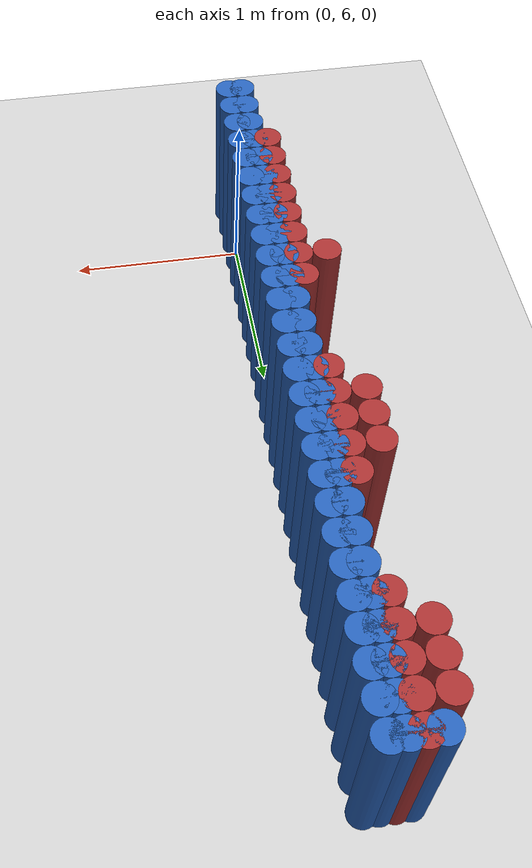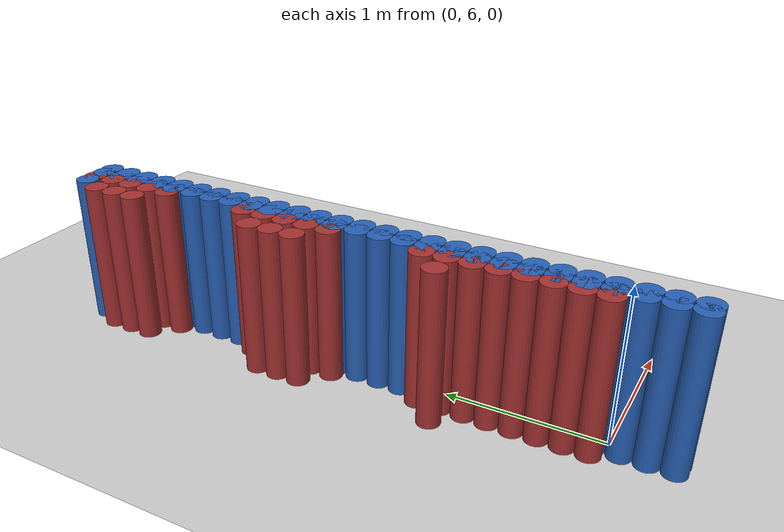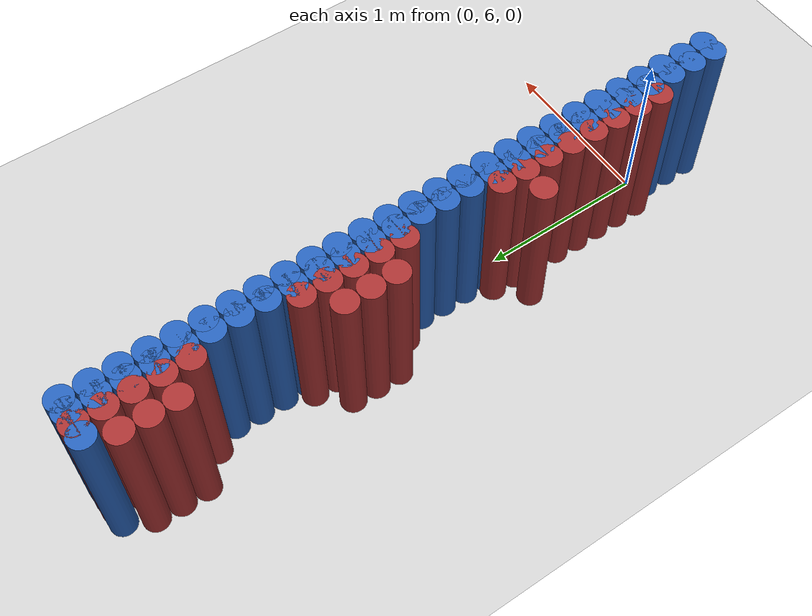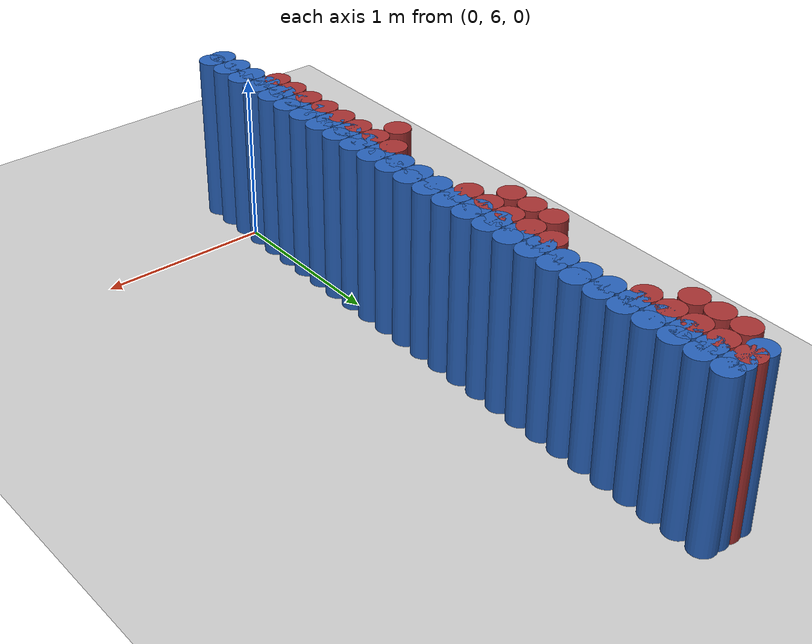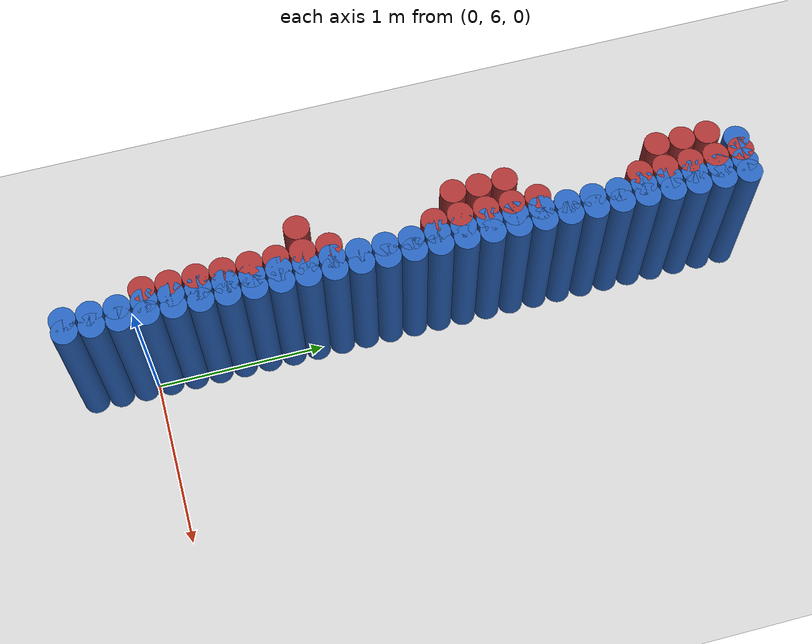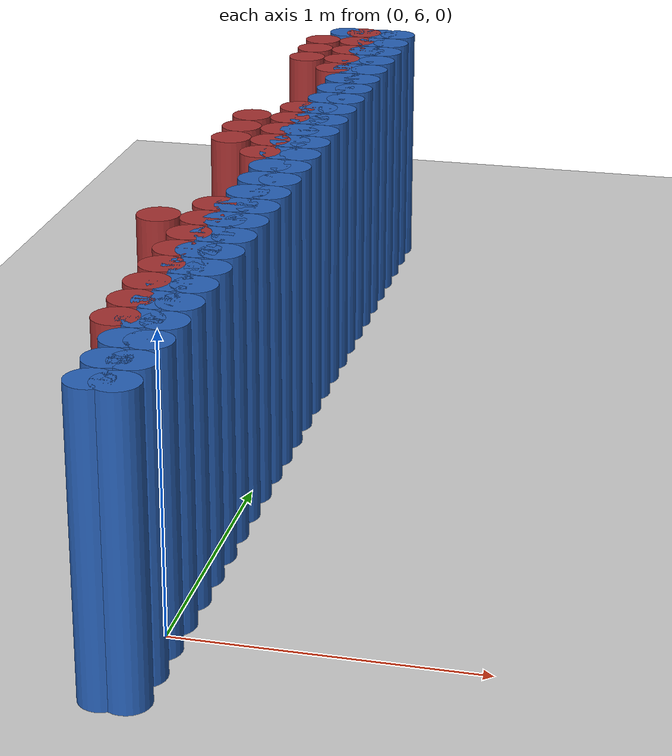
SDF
<sdf version="1.6">
 <world name="barn_world">
  <model name="ground_plane">
   <static>1</static>
   <link name="link">
    <collision name="collision">
     <geometry><plane><normal>0 0 1</normal><size>100 100</size></plane></geometry>
    </collision>
    <visual name="visual">
     <geometry><plane><normal>0 0 1</normal><size>100 100</size></plane></geometry>
     <material>
      <script><uri>file://media/materials/scripts/gazebo.material</uri><name>Gazebo/Grey</name></script>
     </material>
    </visual>
   </link>
  </model>
  <model name="unit_cylinder_257">
   <static>1</static>
   <pose>-0.3000 6.9750 0.5 0 0 0</pose>
   <link name="link">
    <collision name="collision">
     <geometry><cylinder><radius>0.075</radius><length>1</length></cylinder></geometry>
    </collision>
    <visual name="visual">
     <geometry><cylinder><radius>0.075</radius><length>1</length></cylinder></geometry>
     <material><ambient>0.648 0.192 0.192 1</ambient><diffuse>0.648 0.192 0.192 1</diffuse></material>
    </visual>
   </link>
  </model>
  <model name="unit_cylinder_258">
   <static>1</static>
   <pose>-0.3000 7.8750 0.5 0 0 0</pose>
   <link name="link">
    <collision name="collision">
     <geometry><cylinder><radius>0.075</radius><length>1</length></cylinder></geometry>
    </collision>
    <visual name="visual">
     <geometry><cylinder><radius>0.075</radius><length>1</length></cylinder></geometry>
     <material><ambient>0.648 0.192 0.192 1</ambient><diffuse>0.648 0.192 0.192 1</diffuse></material>
    </visual>
   </link>
  </model>
  <model name="unit_cylinder_259">
   <static>1</static>
   <pose>-0.3000 8.0250 0.5 0 0 0</pose>
   <link name="link">
    <collision name="collision">
     <geometry><cylinder><radius>0.075</radius><length>1</length></cylinder></geometry>
    </collision>
    <visual name="visual">
     <geometry><cylinder><radius>0.075</radius><length>1</length></cylinder></geometry>
     <material><ambient>0.648 0.192 0.192 1</ambient><diffuse>0.648 0.192 0.192 1</diffuse></material>
    </visual>
   </link>
  </model>
  <model name="unit_cylinder_260">
   <static>1</static>
   <pose>-0.3000 8.1750 0.5 0 0 0</pose>
   <link name="link">
    <collision name="collision">
     <geometry><cylinder><radius>0.075</radius><length>1</length></cylinder></geometry>
    </collision>
    <visual name="visual">
     <geometry><cylinder><radius>0.075</radius><length>1</length></cylinder></geometry>
     <material><ambient>0.648 0.192 0.192 1</ambient><diffuse>0.648 0.192 0.192 1</diffuse></material>
    </visual>
   </link>
  </model>
  <model name="unit_cylinder_261">
   <static>1</static>
   <pose>-0.3000 9.0750 0.5 0 0 0</pose>
   <link name="link">
    <collision name="collision">
     <geometry><cylinder><radius>0.075</radius><length>1</length></cylinder></geometry>
    </collision>
    <visual name="visual">
     <geometry><cylinder><radius>0.075</radius><length>1</length></cylinder></geometry>
     <material><ambient>0.648 0.192 0.192 1</ambient><diffuse>0.648 0.192 0.192 1</diffuse></material>
    </visual>
   </link>
  </model>
  <model name="unit_cylinder_262">
   <static>1</static>
   <pose>-0.3000 9.2250 0.5 0 0 0</pose>
   <link name="link">
    <collision name="collision">
     <geometry><cylinder><radius>0.075</radius><length>1</length></cylinder></geometry>
    </collision>
    <visual name="visual">
     <geometry><cylinder><radius>0.075</radius><length>1</length></cylinder></geometry>
     <material><ambient>0.648 0.192 0.192 1</ambient><diffuse>0.648 0.192 0.192 1</diffuse></material>
    </visual>
   </link>
  </model>
  <model name="unit_cylinder_263">
   <static>1</static>
   <pose>-0.3000 9.3750 0.5 0 0 0</pose>
   <link name="link">
    <collision name="collision">
     <geometry><cylinder><radius>0.075</radius><length>1</length></cylinder></geometry>
    </collision>
    <visual name="visual">
     <geometry><cylinder><radius>0.075</radius><length>1</length></cylinder></geometry>
     <material><ambient>0.648 0.192 0.192 1</ambient><diffuse>0.648 0.192 0.192 1</diffuse></material>
    </visual>
   </link>
  </model>
  <model name="unit_cylinder_264">
   <static>1</static>
   <pose>-0.1500 6.0750 0.5 0 0 0</pose>
   <link name="link">
    <collision name="collision">
     <geometry><cylinder><radius>0.075</radius><length>1</length></cylinder></geometry>
    </collision>
    <visual name="visual">
     <geometry><cylinder><radius>0.075</radius><length>1</length></cylinder></geometry>
     <material><ambient>0.648 0.192 0.192 1</ambient><diffuse>0.648 0.192 0.192 1</diffuse></material>
    </visual>
   </link>
  </model>
  <model name="unit_cylinder_265">
   <static>1</static>
   <pose>-0.1500 6.2250 0.5 0 0 0</pose>
   <link name="link">
    <collision name="collision">
     <geometry><cylinder><radius>0.075</radius><length>1</length></cylinder></geometry>
    </collision>
    <visual name="visual">
     <geometry><cylinder><radius>0.075</radius><length>1</length></cylinder></geometry>
     <material><ambient>0.648 0.192 0.192 1</ambient><diffuse>0.648 0.192 0.192 1</diffuse></material>
    </visual>
   </link>
  </model>
  <model name="unit_cylinder_266">
   <static>1</static>
   <pose>-0.1500 6.3750 0.5 0 0 0</pose>
   <link name="link">
    <collision name="collision">
     <geometry><cylinder><radius>0.075</radius><length>1</length></cylinder></geometry>
    </collision>
    <visual name="visual">
     <geometry><cylinder><radius>0.075</radius><length>1</length></cylinder></geometry>
     <material><ambient>0.648 0.192 0.192 1</ambient><diffuse>0.648 0.192 0.192 1</diffuse></material>
    </visual>
   </link>
  </model>
  <model name="unit_cylinder_267">
   <static>1</static>
   <pose>-0.1500 6.5250 0.5 0 0 0</pose>
   <link name="link">
    <collision name="collision">
     <geometry><cylinder><radius>0.075</radius><length>1</length></cylinder></geometry>
    </collision>
    <visual name="visual">
     <geometry><cylinder><radius>0.075</radius><length>1</length></cylinder></geometry>
     <material><ambient>0.648 0.192 0.192 1</ambient><diffuse>0.648 0.192 0.192 1</diffuse></material>
    </visual>
   </link>
  </model>
  <model name="unit_cylinder_268">
   <static>1</static>
   <pose>-0.1500 6.6750 0.5 0 0 0</pose>
   <link name="link">
    <collision name="collision">
     <geometry><cylinder><radius>0.075</radius><length>1</length></cylinder></geometry>
    </collision>
    <visual name="visual">
     <geometry><cylinder><radius>0.075</radius><length>1</length></cylinder></geometry>
     <material><ambient>0.648 0.192 0.192 1</ambient><diffuse>0.648 0.192 0.192 1</diffuse></material>
    </visual>
   </link>
  </model>
  <model name="unit_cylinder_269">
   <static>1</static>
   <pose>-0.1500 6.8250 0.5 0 0 0</pose>
   <link name="link">
    <collision name="collision">
     <geometry><cylinder><radius>0.075</radius><length>1</length></cylinder></geometry>
    </collision>
    <visual name="visual">
     <geometry><cylinder><radius>0.075</radius><length>1</length></cylinder></geometry>
     <material><ambient>0.648 0.192 0.192 1</ambient><diffuse>0.648 0.192 0.192 1</diffuse></material>
    </visual>
   </link>
  </model>
  <model name="unit_cylinder_270">
   <static>1</static>
   <pose>-0.1500 6.9750 0.5 0 0 0</pose>
   <link name="link">
    <collision name="collision">
     <geometry><cylinder><radius>0.075</radius><length>1</length></cylinder></geometry>
    </collision>
    <visual name="visual">
     <geometry><cylinder><radius>0.075</radius><length>1</length></cylinder></geometry>
     <material><ambient>0.648 0.192 0.192 1</ambient><diffuse>0.648 0.192 0.192 1</diffuse></material>
    </visual>
   </link>
  </model>
  <model name="unit_cylinder_271">
   <static>1</static>
   <pose>-0.1500 7.1250 0.5 0 0 0</pose>
   <link name="link">
    <collision name="collision">
     <geometry><cylinder><radius>0.075</radius><length>1</length></cylinder></geometry>
    </collision>
    <visual name="visual">
     <geometry><cylinder><radius>0.075</radius><length>1</length></cylinder></geometry>
     <material><ambient>0.648 0.192 0.192 1</ambient><diffuse>0.648 0.192 0.192 1</diffuse></material>
    </visual>
   </link>
  </model>
  <model name="unit_cylinder_272">
   <static>1</static>
   <pose>-0.1500 7.7250 0.5 0 0 0</pose>
   <link name="link">
    <collision name="collision">
     <geometry><cylinder><radius>0.075</radius><length>1</length></cylinder></geometry>
    </collision>
    <visual name="visual">
     <geometry><cylinder><radius>0.075</radius><length>1</length></cylinder></geometry>
     <material><ambient>0.648 0.192 0.192 1</ambient><diffuse>0.648 0.192 0.192 1</diffuse></material>
    </visual>
   </link>
  </model>
  <model name="unit_cylinder_273">
   <static>1</static>
   <pose>-0.1500 7.8750 0.5 0 0 0</pose>
   <link name="link">
    <collision name="collision">
     <geometry><cylinder><radius>0.075</radius><length>1</length></cylinder></geometry>
    </collision>
    <visual name="visual">
     <geometry><cylinder><radius>0.075</radius><length>1</length></cylinder></geometry>
     <material><ambient>0.648 0.192 0.192 1</ambient><diffuse>0.648 0.192 0.192 1</diffuse></material>
    </visual>
   </link>
  </model>
  <model name="unit_cylinder_274">
   <static>1</static>
   <pose>-0.1500 8.0250 0.5 0 0 0</pose>
   <link name="link">
    <collision name="collision">
     <geometry><cylinder><radius>0.075</radius><length>1</length></cylinder></geometry>
    </collision>
    <visual name="visual">
     <geometry><cylinder><radius>0.075</radius><length>1</length></cylinder></geometry>
     <material><ambient>0.648 0.192 0.192 1</ambient><diffuse>0.648 0.192 0.192 1</diffuse></material>
    </visual>
   </link>
  </model>
  <model name="unit_cylinder_275">
   <static>1</static>
   <pose>-0.1500 8.1750 0.5 0 0 0</pose>
   <link name="link">
    <collision name="collision">
     <geometry><cylinder><radius>0.075</radius><length>1</length></cylinder></geometry>
    </collision>
    <visual name="visual">
     <geometry><cylinder><radius>0.075</radius><length>1</length></cylinder></geometry>
     <material><ambient>0.648 0.192 0.192 1</ambient><diffuse>0.648 0.192 0.192 1</diffuse></material>
    </visual>
   </link>
  </model>
  <model name="unit_cylinder_276">
   <static>1</static>
   <pose>-0.1500 8.3250 0.5 0 0 0</pose>
   <link name="link">
    <collision name="collision">
     <geometry><cylinder><radius>0.075</radius><length>1</length></cylinder></geometry>
    </collision>
    <visual name="visual">
     <geometry><cylinder><radius>0.075</radius><length>1</length></cylinder></geometry>
     <material><ambient>0.648 0.192 0.192 1</ambient><diffuse>0.648 0.192 0.192 1</diffuse></material>
    </visual>
   </link>
  </model>
  <model name="unit_cylinder_277">
   <static>1</static>
   <pose>-0.1500 8.9250 0.5 0 0 0</pose>
   <link name="link">
    <collision name="collision">
     <geometry><cylinder><radius>0.075</radius><length>1</length></cylinder></geometry>
    </collision>
    <visual name="visual">
     <geometry><cylinder><radius>0.075</radius><length>1</length></cylinder></geometry>
     <material><ambient>0.648 0.192 0.192 1</ambient><diffuse>0.648 0.192 0.192 1</diffuse></material>
    </visual>
   </link>
  </model>
  <model name="unit_cylinder_278">
   <static>1</static>
   <pose>-0.1500 9.0750 0.5 0 0 0</pose>
   <link name="link">
    <collision name="collision">
     <geometry><cylinder><radius>0.075</radius><length>1</length></cylinder></geometry>
    </collision>
    <visual name="visual">
     <geometry><cylinder><radius>0.075</radius><length>1</length></cylinder></geometry>
     <material><ambient>0.648 0.192 0.192 1</ambient><diffuse>0.648 0.192 0.192 1</diffuse></material>
    </visual>
   </link>
  </model>
  <model name="unit_cylinder_279">
   <static>1</static>
   <pose>-0.1500 9.2250 0.5 0 0 0</pose>
   <link name="link">
    <collision name="collision">
     <geometry><cylinder><radius>0.075</radius><length>1</length></cylinder></geometry>
    </collision>
    <visual name="visual">
     <geometry><cylinder><radius>0.075</radius><length>1</length></cylinder></geometry>
     <material><ambient>0.648 0.192 0.192 1</ambient><diffuse>0.648 0.192 0.192 1</diffuse></material>
    </visual>
   </link>
  </model>
  <model name="unit_cylinder_280">
   <static>1</static>
   <pose>-0.1500 9.3750 0.5 0 0 0</pose>
   <link name="link">
    <collision name="collision">
     <geometry><cylinder><radius>0.075</radius><length>1</length></cylinder></geometry>
    </collision>
    <visual name="visual">
     <geometry><cylinder><radius>0.075</radius><length>1</length></cylinder></geometry>
     <material><ambient>0.648 0.192 0.192 1</ambient><diffuse>0.648 0.192 0.192 1</diffuse></material>
    </visual>
   </link>
  </model>
  <model name="unit_cylinder_281">
   <static>1</static>
   <pose>-0.1500 9.5250 0.5 0 0 0</pose>
   <link name="link">
    <collision name="collision">
     <geometry><cylinder><radius>0.075</radius><length>1</length></cylinder></geometry>
    </collision>
    <visual name="visual">
     <geometry><cylinder><radius>0.075</radius><length>1</length></cylinder></geometry>
     <material><ambient>0.648 0.192 0.192 1</ambient><diffuse>0.648 0.192 0.192 1</diffuse></material>
    </visual>
   </link>
  </model>
  <model name="unit_cylinder_285">
   <static>1</static>
   <pose>0.0000 5.6250 0.5 0 0 0</pose>
   <link name="link">
    <collision name="collision">
     <geometry><cylinder><radius>0.075</radius><length>1</length></cylinder></geometry>
    </collision>
    <visual name="visual">
     <geometry><cylinder><radius>0.075</radius><length>1</length></cylinder></geometry>
     <material><ambient>0.152 0.379 0.72 1</ambient><diffuse>0.152 0.379 0.72 1</diffuse></material>
    </visual>
   </link>
  </model>
  <model name="unit_cylinder_286">
   <static>1</static>
   <pose>0.0000 5.7750 0.5 0 0 0</pose>
   <link name="link">
    <collision name="collision">
     <geometry><cylinder><radius>0.075</radius><length>1</length></cylinder></geometry>
    </collision>
    <visual name="visual">
     <geometry><cylinder><radius>0.075</radius><length>1</length></cylinder></geometry>
     <material><ambient>0.152 0.379 0.72 1</ambient><diffuse>0.152 0.379 0.72 1</diffuse></material>
    </visual>
   </link>
  </model>
  <model name="unit_cylinder_287">
   <static>1</static>
   <pose>0.0000 5.9250 0.5 0 0 0</pose>
   <link name="link">
    <collision name="collision">
     <geometry><cylinder><radius>0.075</radius><length>1</length></cylinder></geometry>
    </collision>
    <visual name="visual">
     <geometry><cylinder><radius>0.075</radius><length>1</length></cylinder></geometry>
     <material><ambient>0.152 0.379 0.72 1</ambient><diffuse>0.152 0.379 0.72 1</diffuse></material>
    </visual>
   </link>
  </model>
  <model name="unit_cylinder_288">
   <static>1</static>
   <pose>0.0000 6.0750 0.5 0 0 0</pose>
   <link name="link">
    <collision name="collision">
     <geometry><cylinder><radius>0.075</radius><length>1</length></cylinder></geometry>
    </collision>
    <visual name="visual">
     <geometry><cylinder><radius>0.075</radius><length>1</length></cylinder></geometry>
     <material><ambient>0.152 0.379 0.72 1</ambient><diffuse>0.152 0.379 0.72 1</diffuse></material>
    </visual>
   </link>
  </model>
  <model name="unit_cylinder_289">
   <static>1</static>
   <pose>0.0000 6.2250 0.5 0 0 0</pose>
   <link name="link">
    <collision name="collision">
     <geometry><cylinder><radius>0.075</radius><length>1</length></cylinder></geometry>
    </collision>
    <visual name="visual">
     <geometry><cylinder><radius>0.075</radius><length>1</length></cylinder></geometry>
     <material><ambient>0.152 0.379 0.72 1</ambient><diffuse>0.152 0.379 0.72 1</diffuse></material>
    </visual>
   </link>
  </model>
  <model name="unit_cylinder_290">
   <static>1</static>
   <pose>0.0000 6.3750 0.5 0 0 0</pose>
   <link name="link">
    <collision name="collision">
     <geometry><cylinder><radius>0.075</radius><length>1</length></cylinder></geometry>
    </collision>
    <visual name="visual">
     <geometry><cylinder><radius>0.075</radius><length>1</length></cylinder></geometry>
     <material><ambient>0.152 0.379 0.72 1</ambient><diffuse>0.152 0.379 0.72 1</diffuse></material>
    </visual>
   </link>
  </model>
  <model name="unit_cylinder_291">
   <static>1</static>
   <pose>0.0000 6.5250 0.5 0 0 0</pose>
   <link name="link">
    <collision name="collision">
     <geometry><cylinder><radius>0.075</radius><length>1</length></cylinder></geometry>
    </collision>
    <visual name="visual">
     <geometry><cylinder><radius>0.075</radius><length>1</length></cylinder></geometry>
     <material><ambient>0.152 0.379 0.72 1</ambient><diffuse>0.152 0.379 0.72 1</diffuse></material>
    </visual>
   </link>
  </model>
  <model name="unit_cylinder_292">
   <static>1</static>
   <pose>0.0000 6.6750 0.5 0 0 0</pose>
   <link name="link">
    <collision name="collision">
     <geometry><cylinder><radius>0.075</radius><length>1</length></cylinder></geometry>
    </collision>
    <visual name="visual">
     <geometry><cylinder><radius>0.075</radius><length>1</length></cylinder></geometry>
     <material><ambient>0.152 0.379 0.72 1</ambient><diffuse>0.152 0.379 0.72 1</diffuse></material>
    </visual>
   </link>
  </model>
  <model name="unit_cylinder_293">
   <static>1</static>
   <pose>0.0000 6.8250 0.5 0 0 0</pose>
   <link name="link">
    <collision name="collision">
     <geometry><cylinder><radius>0.075</radius><length>1</length></cylinder></geometry>
    </collision>
    <visual name="visual">
     <geometry><cylinder><radius>0.075</radius><length>1</length></cylinder></geometry>
     <material><ambient>0.152 0.379 0.72 1</ambient><diffuse>0.152 0.379 0.72 1</diffuse></material>
    </visual>
   </link>
  </model>
  <model name="unit_cylinder_294">
   <static>1</static>
   <pose>0.0000 6.9750 0.5 0 0 0</pose>
   <link name="link">
    <collision name="collision">
     <geometry><cylinder><radius>0.075</radius><length>1</length></cylinder></geometry>
    </collision>
    <visual name="visual">
     <geometry><cylinder><radius>0.075</radius><length>1</length></cylinder></geometry>
     <material><ambient>0.152 0.379 0.72 1</ambient><diffuse>0.152 0.379 0.72 1</diffuse></material>
    </visual>
   </link>
  </model>
  <model name="unit_cylinder_295">
   <static>1</static>
   <pose>0.0000 7.1250 0.5 0 0 0</pose>
   <link name="link">
    <collision name="collision">
     <geometry><cylinder><radius>0.075</radius><length>1</length></cylinder></geometry>
    </collision>
    <visual name="visual">
     <geometry><cylinder><radius>0.075</radius><length>1</length></cylinder></geometry>
     <material><ambient>0.152 0.379 0.72 1</ambient><diffuse>0.152 0.379 0.72 1</diffuse></material>
    </visual>
   </link>
  </model>
  <model name="unit_cylinder_296">
   <static>1</static>
   <pose>0.0000 7.2750 0.5 0 0 0</pose>
   <link name="link">
    <collision name="collision">
     <geometry><cylinder><radius>0.075</radius><length>1</length></cylinder></geometry>
    </collision>
    <visual name="visual">
     <geometry><cylinder><radius>0.075</radius><length>1</length></cylinder></geometry>
     <material><ambient>0.152 0.379 0.72 1</ambient><diffuse>0.152 0.379 0.72 1</diffuse></material>
    </visual>
   </link>
  </model>
  <model name="unit_cylinder_297">
   <static>1</static>
   <pose>0.0000 7.4250 0.5 0 0 0</pose>
   <link name="link">
    <collision name="collision">
     <geometry><cylinder><radius>0.075</radius><length>1</length></cylinder></geometry>
    </collision>
    <visual name="visual">
     <geometry><cylinder><radius>0.075</radius><length>1</length></cylinder></geometry>
     <material><ambient>0.152 0.379 0.72 1</ambient><diffuse>0.152 0.379 0.72 1</diffuse></material>
    </visual>
   </link>
  </model>
  <model name="unit_cylinder_298">
   <static>1</static>
   <pose>0.0000 7.5750 0.5 0 0 0</pose>
   <link name="link">
    <collision name="collision">
     <geometry><cylinder><radius>0.075</radius><length>1</length></cylinder></geometry>
    </collision>
    <visual name="visual">
     <geometry><cylinder><radius>0.075</radius><length>1</length></cylinder></geometry>
     <material><ambient>0.152 0.379 0.72 1</ambient><diffuse>0.152 0.379 0.72 1</diffuse></material>
    </visual>
   </link>
  </model>
  <model name="unit_cylinder_299">
   <static>1</static>
   <pose>0.0000 7.7250 0.5 0 0 0</pose>
   <link name="link">
    <collision name="collision">
     <geometry><cylinder><radius>0.075</radius><length>1</length></cylinder></geometry>
    </collision>
    <visual name="visual">
     <geometry><cylinder><radius>0.075</radius><length>1</length></cylinder></geometry>
     <material><ambient>0.152 0.379 0.72 1</ambient><diffuse>0.152 0.379 0.72 1</diffuse></material>
    </visual>
   </link>
  </model>
  <model name="unit_cylinder_300">
   <static>1</static>
   <pose>0.0000 7.8750 0.5 0 0 0</pose>
   <link name="link">
    <collision name="collision">
     <geometry><cylinder><radius>0.075</radius><length>1</length></cylinder></geometry>
    </collision>
    <visual name="visual">
     <geometry><cylinder><radius>0.075</radius><length>1</length></cylinder></geometry>
     <material><ambient>0.152 0.379 0.72 1</ambient><diffuse>0.152 0.379 0.72 1</diffuse></material>
    </visual>
   </link>
  </model>
  <model name="unit_cylinder_301">
   <static>1</static>
   <pose>0.0000 8.0250 0.5 0 0 0</pose>
   <link name="link">
    <collision name="collision">
     <geometry><cylinder><radius>0.075</radius><length>1</length></cylinder></geometry>
    </collision>
    <visual name="visual">
     <geometry><cylinder><radius>0.075</radius><length>1</length></cylinder></geometry>
     <material><ambient>0.152 0.379 0.72 1</ambient><diffuse>0.152 0.379 0.72 1</diffuse></material>
    </visual>
   </link>
  </model>
  <model name="unit_cylinder_302">
   <static>1</static>
   <pose>0.0000 8.1750 0.5 0 0 0</pose>
   <link name="link">
    <collision name="collision">
     <geometry><cylinder><radius>0.075</radius><length>1</length></cylinder></geometry>
    </collision>
    <visual name="visual">
     <geometry><cylinder><radius>0.075</radius><length>1</length></cylinder></geometry>
     <material><ambient>0.152 0.379 0.72 1</ambient><diffuse>0.152 0.379 0.72 1</diffuse></material>
    </visual>
   </link>
  </model>
  <model name="unit_cylinder_303">
   <static>1</static>
   <pose>0.0000 8.3250 0.5 0 0 0</pose>
   <link name="link">
    <collision name="collision">
     <geometry><cylinder><radius>0.075</radius><length>1</length></cylinder></geometry>
    </collision>
    <visual name="visual">
     <geometry><cylinder><radius>0.075</radius><length>1</length></cylinder></geometry>
     <material><ambient>0.152 0.379 0.72 1</ambient><diffuse>0.152 0.379 0.72 1</diffuse></material>
    </visual>
   </link>
  </model>
  <model name="unit_cylinder_304">
   <static>1</static>
   <pose>0.0000 8.4750 0.5 0 0 0</pose>
   <link name="link">
    <collision name="collision">
     <geometry><cylinder><radius>0.075</radius><length>1</length></cylinder></geometry>
    </collision>
    <visual name="visual">
     <geometry><cylinder><radius>0.075</radius><length>1</length></cylinder></geometry>
     <material><ambient>0.152 0.379 0.72 1</ambient><diffuse>0.152 0.379 0.72 1</diffuse></material>
    </visual>
   </link>
  </model>
  <model name="unit_cylinder_305">
   <static>1</static>
   <pose>0.0000 8.6250 0.5 0 0 0</pose>
   <link name="link">
    <collision name="collision">
     <geometry><cylinder><radius>0.075</radius><length>1</length></cylinder></geometry>
    </collision>
    <visual name="visual">
     <geometry><cylinder><radius>0.075</radius><length>1</length></cylinder></geometry>
     <material><ambient>0.152 0.379 0.72 1</ambient><diffuse>0.152 0.379 0.72 1</diffuse></material>
    </visual>
   </link>
  </model>
  <model name="unit_cylinder_306">
   <static>1</static>
   <pose>0.0000 8.7750 0.5 0 0 0</pose>
   <link name="link">
    <collision name="collision">
     <geometry><cylinder><radius>0.075</radius><length>1</length></cylinder></geometry>
    </collision>
    <visual name="visual">
     <geometry><cylinder><radius>0.075</radius><length>1</length></cylinder></geometry>
     <material><ambient>0.152 0.379 0.72 1</ambient><diffuse>0.152 0.379 0.72 1</diffuse></material>
    </visual>
   </link>
  </model>
  <model name="unit_cylinder_307">
   <static>1</static>
   <pose>0.0000 8.9250 0.5 0 0 0</pose>
   <link name="link">
    <collision name="collision">
     <geometry><cylinder><radius>0.075</radius><length>1</length></cylinder></geometry>
    </collision>
    <visual name="visual">
     <geometry><cylinder><radius>0.075</radius><length>1</length></cylinder></geometry>
     <material><ambient>0.152 0.379 0.72 1</ambient><diffuse>0.152 0.379 0.72 1</diffuse></material>
    </visual>
   </link>
  </model>
  <model name="unit_cylinder_308">
   <static>1</static>
   <pose>0.0000 9.0750 0.5 0 0 0</pose>
   <link name="link">
    <collision name="collision">
     <geometry><cylinder><radius>0.075</radius><length>1</length></cylinder></geometry>
    </collision>
    <visual name="visual">
     <geometry><cylinder><radius>0.075</radius><length>1</length></cylinder></geometry>
     <material><ambient>0.152 0.379 0.72 1</ambient><diffuse>0.152 0.379 0.72 1</diffuse></material>
    </visual>
   </link>
  </model>
  <model name="unit_cylinder_309">
   <static>1</static>
   <pose>0.0000 9.2250 0.5 0 0 0</pose>
   <link name="link">
    <collision name="collision">
     <geometry><cylinder><radius>0.075</radius><length>1</length></cylinder></geometry>
    </collision>
    <visual name="visual">
     <geometry><cylinder><radius>0.075</radius><length>1</length></cylinder></geometry>
     <material><ambient>0.152 0.379 0.72 1</ambient><diffuse>0.152 0.379 0.72 1</diffuse></material>
    </visual>
   </link>
  </model>
  <model name="unit_cylinder_310">
   <static>1</static>
   <pose>0.0000 9.3750 0.5 0 0 0</pose>
   <link name="link">
    <collision name="collision">
     <geometry><cylinder><radius>0.075</radius><length>1</length></cylinder></geometry>
    </collision>
    <visual name="visual">
     <geometry><cylinder><radius>0.075</radius><length>1</length></cylinder></geometry>
     <material><ambient>0.152 0.379 0.72 1</ambient><diffuse>0.152 0.379 0.72 1</diffuse></material>
    </visual>
   </link>
  </model>
  <model name="unit_cylinder_311">
   <static>1</static>
   <pose>0.0000 9.5250 0.5 0 0 0</pose>
   <link name="link">
    <collision name="collision">
     <geometry><cylinder><radius>0.075</radius><length>1</length></cylinder></geometry>
    </collision>
    <visual name="visual">
     <geometry><cylinder><radius>0.075</radius><length>1</length></cylinder></geometry>
     <material><ambient>0.152 0.379 0.72 1</ambient><diffuse>0.152 0.379 0.72 1</diffuse></material>
    </visual>
   </link>
  </model>
  <model name="unit_cylinder_312">
   <static>1</static>
   <pose>-0.0750 9.5250 0.5 0 0 0</pose>
   <link name="link">
    <collision name="collision">
     <geometry><cylinder><radius>0.075</radius><length>1</length></cylinder></geometry>
    </collision>
    <visual name="visual">
     <geometry><cylinder><radius>0.075</radius><length>1</length></cylinder></geometry>
     <material><ambient>0.152 0.379 0.72 1</ambient><diffuse>0.152 0.379 0.72 1</diffuse></material>
    </visual>
   </link>
  </model>
  <model name="unit_cylinder_313">
   <static>1</static>
   <pose>-0.2250 9.5250 0.5 0 0 0</pose>
   <link name="link">
    <collision name="collision">
     <geometry><cylinder><radius>0.075</radius><length>1</length></cylinder></geometry>
    </collision>
    <visual name="visual">
     <geometry><cylinder><radius>0.075</radius><length>1</length></cylinder></geometry>
     <material><ambient>0.152 0.379 0.72 1</ambient><diffuse>0.152 0.379 0.72 1</diffuse></material>
    </visual>
   </link>
  </model>
  <model name="unit_cylinder_348">
   <static>1</static>
   <pose>-0.0750 5.6250 0.5 0 0 0</pose>
   <link name="link">
    <collision name="collision">
     <geometry><cylinder><radius>0.075</radius><length>1</length></cylinder></geometry>
    </collision>
    <visual name="visual">
     <geometry><cylinder><radius>0.075</radius><length>1</length></cylinder></geometry>
     <material><ambient>0.152 0.379 0.72 1</ambient><diffuse>0.152 0.379 0.72 1</diffuse></material>
    </visual>
   </link>
  </model>
  <model name="unit_cylinder_350">
   <static>1</static>
   <pose>-0.0750 5.7750 0.5 0 0 0</pose>
   <link name="link">
    <collision name="collision">
     <geometry><cylinder><radius>0.075</radius><length>1</length></cylinder></geometry>
    </collision>
    <visual name="visual">
     <geometry><cylinder><radius>0.075</radius><length>1</length></cylinder></geometry>
     <material><ambient>0.152 0.379 0.72 1</ambient><diffuse>0.152 0.379 0.72 1</diffuse></material>
    </visual>
   </link>
  </model>
  <model name="unit_cylinder_352">
   <static>1</static>
   <pose>-0.0750 5.9250 0.5 0 0 0</pose>
   <link name="link">
    <collision name="collision">
     <geometry><cylinder><radius>0.075</radius><length>1</length></cylinder></geometry>
    </collision>
    <visual name="visual">
     <geometry><cylinder><radius>0.075</radius><length>1</length></cylinder></geometry>
     <material><ambient>0.152 0.379 0.72 1</ambient><diffuse>0.152 0.379 0.72 1</diffuse></material>
    </visual>
   </link>
  </model>
  <model name="unit_cylinder_354">
   <static>1</static>
   <pose>-0.0750 6.0750 0.5 0 0 0</pose>
   <link name="link">
    <collision name="collision">
     <geometry><cylinder><radius>0.075</radius><length>1</length></cylinder></geometry>
    </collision>
    <visual name="visual">
     <geometry><cylinder><radius>0.075</radius><length>1</length></cylinder></geometry>
     <material><ambient>0.152 0.379 0.72 1</ambient><diffuse>0.152 0.379 0.72 1</diffuse></material>
    </visual>
   </link>
  </model>
  <model name="unit_cylinder_356">
   <static>1</static>
   <pose>-0.0750 6.2250 0.5 0 0 0</pose>
   <link name="link">
    <collision name="collision">
     <geometry><cylinder><radius>0.075</radius><length>1</length></cylinder></geometry>
    </collision>
    <visual name="visual">
     <geometry><cylinder><radius>0.075</radius><length>1</length></cylinder></geometry>
     <material><ambient>0.152 0.379 0.72 1</ambient><diffuse>0.152 0.379 0.72 1</diffuse></material>
    </visual>
   </link>
  </model>
  <model name="unit_cylinder_358">
   <static>1</static>
   <pose>-0.0750 6.3750 0.5 0 0 0</pose>
   <link name="link">
    <collision name="collision">
     <geometry><cylinder><radius>0.075</radius><length>1</length></cylinder></geometry>
    </collision>
    <visual name="visual">
     <geometry><cylinder><radius>0.075</radius><length>1</length></cylinder></geometry>
     <material><ambient>0.152 0.379 0.72 1</ambient><diffuse>0.152 0.379 0.72 1</diffuse></material>
    </visual>
   </link>
  </model>
  <model name="unit_cylinder_360">
   <static>1</static>
   <pose>-0.0750 6.5250 0.5 0 0 0</pose>
   <link name="link">
    <collision name="collision">
     <geometry><cylinder><radius>0.075</radius><length>1</length></cylinder></geometry>
    </collision>
    <visual name="visual">
     <geometry><cylinder><radius>0.075</radius><length>1</length></cylinder></geometry>
     <material><ambient>0.152 0.379 0.72 1</ambient><diffuse>0.152 0.379 0.72 1</diffuse></material>
    </visual>
   </link>
  </model>
  <model name="unit_cylinder_362">
   <static>1</static>
   <pose>-0.0750 6.6750 0.5 0 0 0</pose>
   <link name="link">
    <collision name="collision">
     <geometry><cylinder><radius>0.075</radius><length>1</length></cylinder></geometry>
    </collision>
    <visual name="visual">
     <geometry><cylinder><radius>0.075</radius><length>1</length></cylinder></geometry>
     <material><ambient>0.152 0.379 0.72 1</ambient><diffuse>0.152 0.379 0.72 1</diffuse></material>
    </visual>
   </link>
  </model>
  <model name="unit_cylinder_364">
   <static>1</static>
   <pose>-0.0750 6.8250 0.5 0 0 0</pose>
   <link name="link">
    <collision name="collision">
     <geometry><cylinder><radius>0.075</radius><length>1</length></cylinder></geometry>
    </collision>
    <visual name="visual">
     <geometry><cylinder><radius>0.075</radius><length>1</length></cylinder></geometry>
     <material><ambient>0.152 0.379 0.72 1</ambient><diffuse>0.152 0.379 0.72 1</diffuse></material>
    </visual>
   </link>
  </model>
  <model name="unit_cylinder_366">
   <static>1</static>
   <pose>-0.0750 6.9750 0.5 0 0 0</pose>
   <link name="link">
    <collision name="collision">
     <geometry><cylinder><radius>0.075</radius><length>1</length></cylinder></geometry>
    </collision>
    <visual name="visual">
     <geometry><cylinder><radius>0.075</radius><length>1</length></cylinder></geometry>
     <material><ambient>0.152 0.379 0.72 1</ambient><diffuse>0.152 0.379 0.72 1</diffuse></material>
    </visual>
   </link>
  </model>
  <model name="unit_cylinder_368">
   <static>1</static>
   <pose>-0.0750 7.1250 0.5 0 0 0</pose>
   <link name="link">
    <collision name="collision">
     <geometry><cylinder><radius>0.075</radius><length>1</length></cylinder></geometry>
    </collision>
    <visual name="visual">
     <geometry><cylinder><radius>0.075</radius><length>1</length></cylinder></geometry>
     <material><ambient>0.152 0.379 0.72 1</ambient><diffuse>0.152 0.379 0.72 1</diffuse></material>
    </visual>
   </link>
  </model>
  <model name="unit_cylinder_370">
   <static>1</static>
   <pose>-0.0750 7.2750 0.5 0 0 0</pose>
   <link name="link">
    <collision name="collision">
     <geometry><cylinder><radius>0.075</radius><length>1</length></cylinder></geometry>
    </collision>
    <visual name="visual">
     <geometry><cylinder><radius>0.075</radius><length>1</length></cylinder></geometry>
     <material><ambient>0.152 0.379 0.72 1</ambient><diffuse>0.152 0.379 0.72 1</diffuse></material>
    </visual>
   </link>
  </model>
  <model name="unit_cylinder_372">
   <static>1</static>
   <pose>-0.0750 7.4250 0.5 0 0 0</pose>
   <link name="link">
    <collision name="collision">
     <geometry><cylinder><radius>0.075</radius><length>1</length></cylinder></geometry>
    </collision>
    <visual name="visual">
     <geometry><cylinder><radius>0.075</radius><length>1</length></cylinder></geometry>
     <material><ambient>0.152 0.379 0.72 1</ambient><diffuse>0.152 0.379 0.72 1</diffuse></material>
    </visual>
   </link>
  </model>
  <model name="unit_cylinder_374">
   <static>1</static>
   <pose>-0.0750 7.5750 0.5 0 0 0</pose>
   <link name="link">
    <collision name="collision">
     <geometry><cylinder><radius>0.075</radius><length>1</length></cylinder></geometry>
    </collision>
    <visual name="visual">
     <geometry><cylinder><radius>0.075</radius><length>1</length></cylinder></geometry>
     <material><ambient>0.152 0.379 0.72 1</ambient><diffuse>0.152 0.379 0.72 1</diffuse></material>
    </visual>
   </link>
  </model>
  <model name="unit_cylinder_376">
   <static>1</static>
   <pose>-0.0750 7.7250 0.5 0 0 0</pose>
   <link name="link">
    <collision name="collision">
     <geometry><cylinder><radius>0.075</radius><length>1</length></cylinder></geometry>
    </collision>
    <visual name="visual">
     <geometry><cylinder><radius>0.075</radius><length>1</length></cylinder></geometry>
     <material><ambient>0.152 0.379 0.72 1</ambient><diffuse>0.152 0.379 0.72 1</diffuse></material>
    </visual>
   </link>
  </model>
  <model name="unit_cylinder_378">
   <static>1</static>
   <pose>-0.0750 7.8750 0.5 0 0 0</pose>
   <link name="link">
    <collision name="collision">
     <geometry><cylinder><radius>0.075</radius><length>1</length></cylinder></geometry>
    </collision>
    <visual name="visual">
     <geometry><cylinder><radius>0.075</radius><length>1</length></cylinder></geometry>
     <material><ambient>0.152 0.379 0.72 1</ambient><diffuse>0.152 0.379 0.72 1</diffuse></material>
    </visual>
   </link>
  </model>
  <model name="unit_cylinder_380">
   <static>1</static>
   <pose>-0.0750 8.0250 0.5 0 0 0</pose>
   <link name="link">
    <collision name="collision">
     <geometry><cylinder><radius>0.075</radius><length>1</length></cylinder></geometry>
    </collision>
    <visual name="visual">
     <geometry><cylinder><radius>0.075</radius><length>1</length></cylinder></geometry>
     <material><ambient>0.152 0.379 0.72 1</ambient><diffuse>0.152 0.379 0.72 1</diffuse></material>
    </visual>
   </link>
  </model>
  <model name="unit_cylinder_382">
   <static>1</static>
   <pose>-0.0750 8.1750 0.5 0 0 0</pose>
   <link name="link">
    <collision name="collision">
     <geometry><cylinder><radius>0.075</radius><length>1</length></cylinder></geometry>
    </collision>
    <visual name="visual">
     <geometry><cylinder><radius>0.075</radius><length>1</length></cylinder></geometry>
     <material><ambient>0.152 0.379 0.72 1</ambient><diffuse>0.152 0.379 0.72 1</diffuse></material>
    </visual>
   </link>
  </model>
  <model name="unit_cylinder_384">
   <static>1</static>
   <pose>-0.0750 8.3250 0.5 0 0 0</pose>
   <link name="link">
    <collision name="collision">
     <geometry><cylinder><radius>0.075</radius><length>1</length></cylinder></geometry>
    </collision>
    <visual name="visual">
     <geometry><cylinder><radius>0.075</radius><length>1</length></cylinder></geometry>
     <material><ambient>0.152 0.379 0.72 1</ambient><diffuse>0.152 0.379 0.72 1</diffuse></material>
    </visual>
   </link>
  </model>
  <model name="unit_cylinder_386">
   <static>1</static>
   <pose>-0.0750 8.4750 0.5 0 0 0</pose>
   <link name="link">
    <collision name="collision">
     <geometry><cylinder><radius>0.075</radius><length>1</length></cylinder></geometry>
    </collision>
    <visual name="visual">
     <geometry><cylinder><radius>0.075</radius><length>1</length></cylinder></geometry>
     <material><ambient>0.152 0.379 0.72 1</ambient><diffuse>0.152 0.379 0.72 1</diffuse></material>
    </visual>
   </link>
  </model>
  <model name="unit_cylinder_388">
   <static>1</static>
   <pose>-0.0750 8.6250 0.5 0 0 0</pose>
   <link name="link">
    <collision name="collision">
     <geometry><cylinder><radius>0.075</radius><length>1</length></cylinder></geometry>
    </collision>
    <visual name="visual">
     <geometry><cylinder><radius>0.075</radius><length>1</length></cylinder></geometry>
     <material><ambient>0.152 0.379 0.72 1</ambient><diffuse>0.152 0.379 0.72 1</diffuse></material>
    </visual>
   </link>
  </model>
  <model name="unit_cylinder_390">
   <static>1</static>
   <pose>-0.0750 8.7750 0.5 0 0 0</pose>
   <link name="link">
    <collision name="collision">
     <geometry><cylinder><radius>0.075</radius><length>1</length></cylinder></geometry>
    </collision>
    <visual name="visual">
     <geometry><cylinder><radius>0.075</radius><length>1</length></cylinder></geometry>
     <material><ambient>0.152 0.379 0.72 1</ambient><diffuse>0.152 0.379 0.72 1</diffuse></material>
    </visual>
   </link>
  </model>
  <model name="unit_cylinder_392">
   <static>1</static>
   <pose>-0.0750 8.9250 0.5 0 0 0</pose>
   <link name="link">
    <collision name="collision">
     <geometry><cylinder><radius>0.075</radius><length>1</length></cylinder></geometry>
    </collision>
    <visual name="visual">
     <geometry><cylinder><radius>0.075</radius><length>1</length></cylinder></geometry>
     <material><ambient>0.152 0.379 0.72 1</ambient><diffuse>0.152 0.379 0.72 1</diffuse></material>
    </visual>
   </link>
  </model>
  <model name="unit_cylinder_394">
   <static>1</static>
   <pose>-0.0750 9.0750 0.5 0 0 0</pose>
   <link name="link">
    <collision name="collision">
     <geometry><cylinder><radius>0.075</radius><length>1</length></cylinder></geometry>
    </collision>
    <visual name="visual">
     <geometry><cylinder><radius>0.075</radius><length>1</length></cylinder></geometry>
     <material><ambient>0.152 0.379 0.72 1</ambient><diffuse>0.152 0.379 0.72 1</diffuse></material>
    </visual>
   </link>
  </model>
  <model name="unit_cylinder_396">
   <static>1</static>
   <pose>-0.0750 9.2250 0.5 0 0 0</pose>
   <link name="link">
    <collision name="collision">
     <geometry><cylinder><radius>0.075</radius><length>1</length></cylinder></geometry>
    </collision>
    <visual name="visual">
     <geometry><cylinder><radius>0.075</radius><length>1</length></cylinder></geometry>
     <material><ambient>0.152 0.379 0.72 1</ambient><diffuse>0.152 0.379 0.72 1</diffuse></material>
    </visual>
   </link>
  </model>
  <model name="unit_cylinder_398">
   <static>1</static>
   <pose>-0.0750 9.3750 0.5 0 0 0</pose>
   <link name="link">
    <collision name="collision">
     <geometry><cylinder><radius>0.075</radius><length>1</length></cylinder></geometry>
    </collision>
    <visual name="visual">
     <geometry><cylinder><radius>0.075</radius><length>1</length></cylinder></geometry>
     <material><ambient>0.152 0.379 0.72 1</ambient><diffuse>0.152 0.379 0.72 1</diffuse></material>
    </visual>
   </link>
  </model>
 </world>
</sdf>
